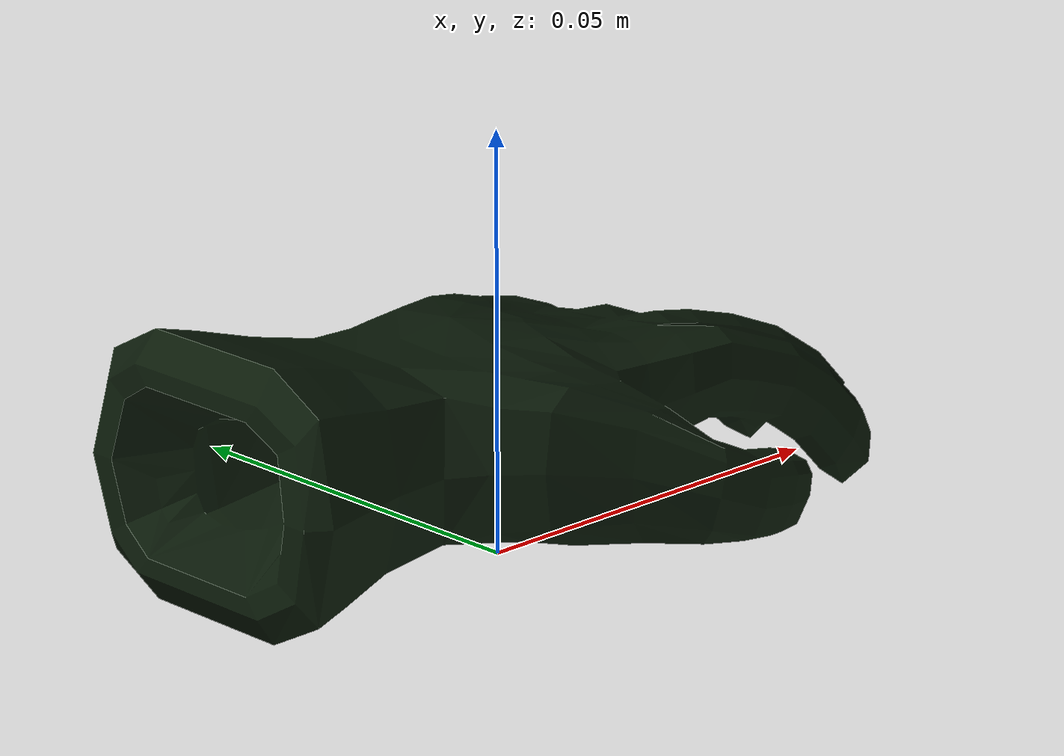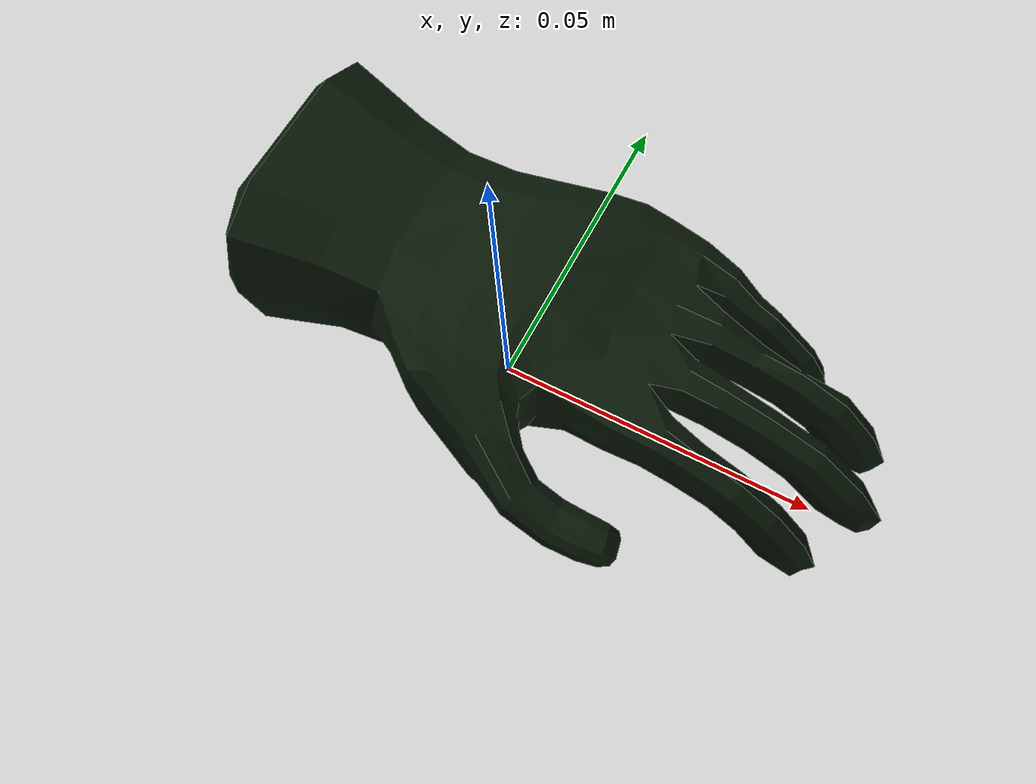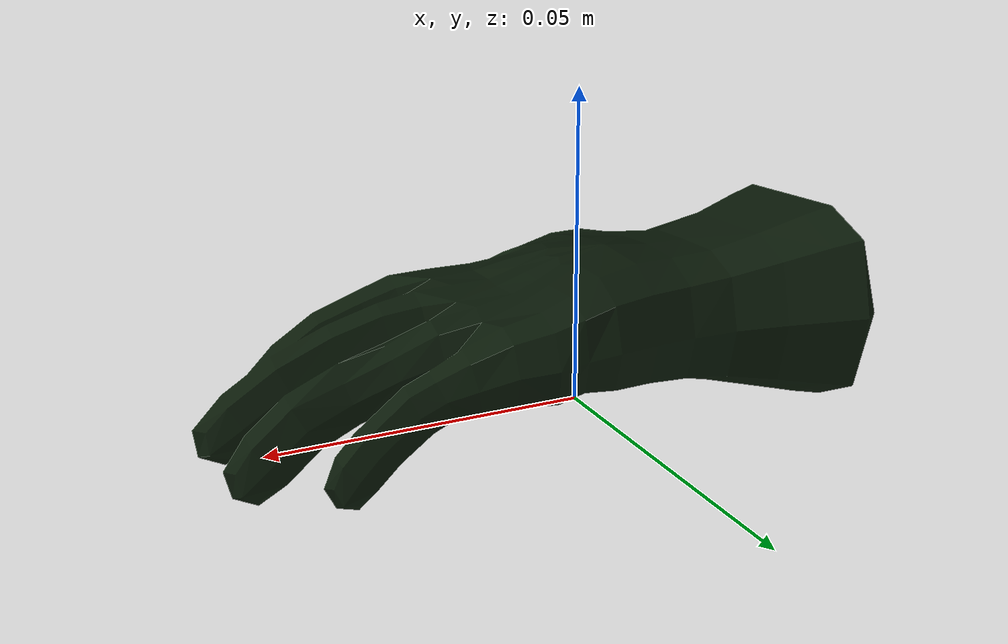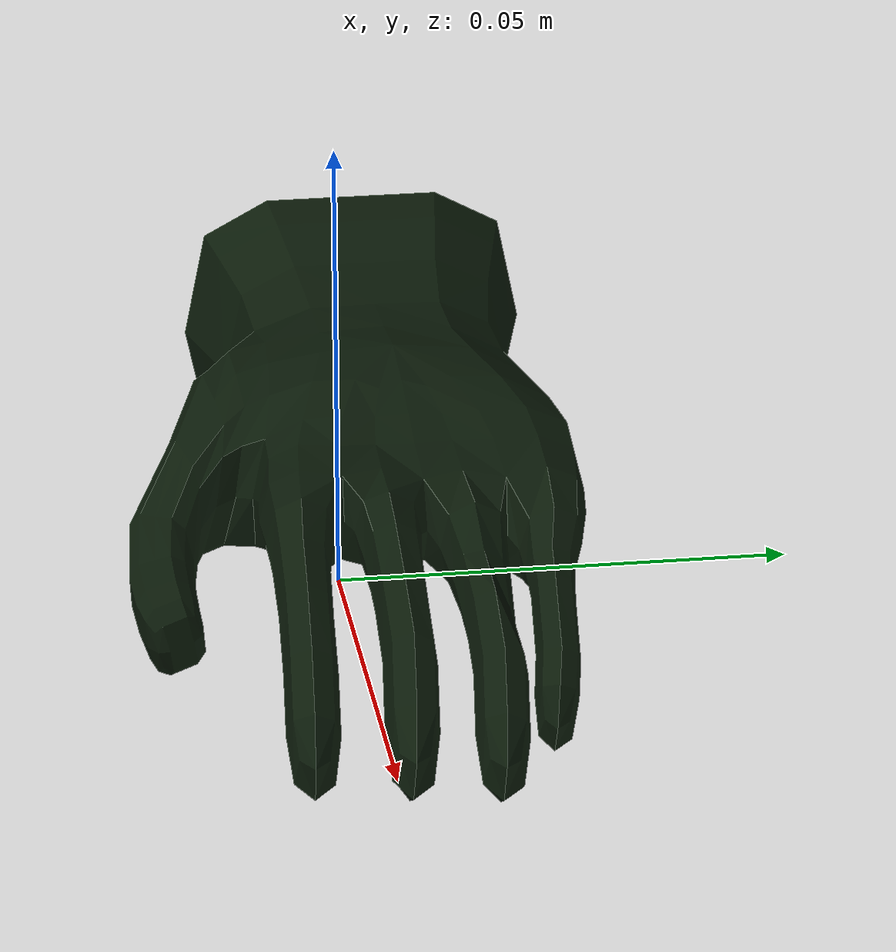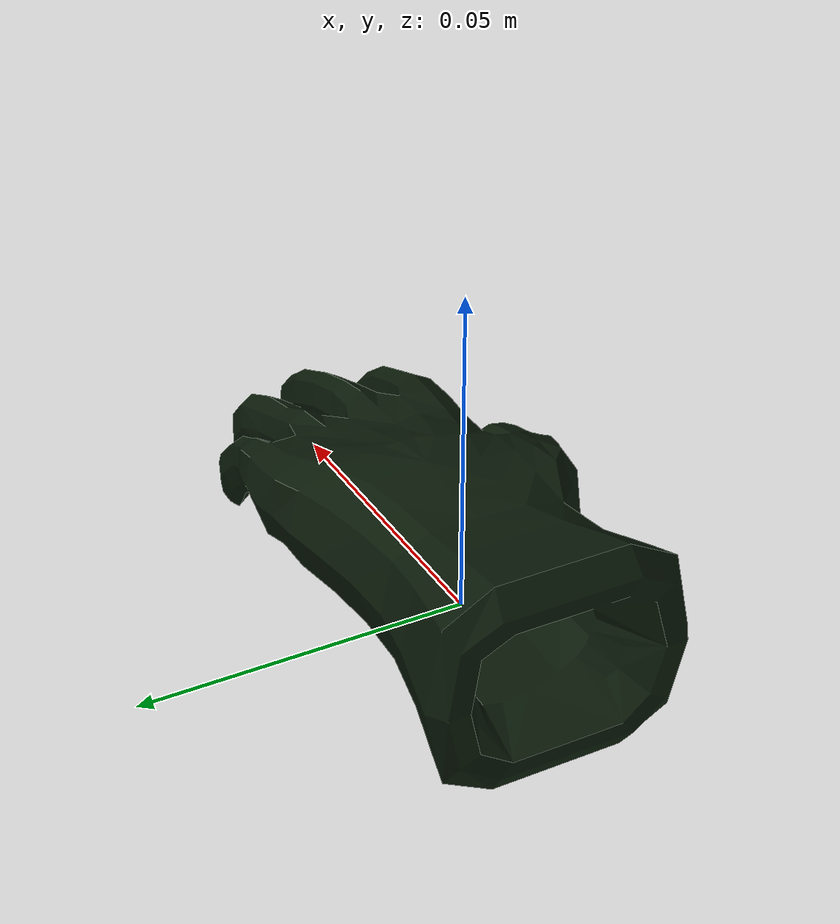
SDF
<?xml version="1.0" ?>

<sdf version="1.4">
  <model name="iai_glove">
    <static>true</static>
    <link name="iai_glove">
      <collision name="collision">
	<geometry>
            <mesh>
	      <uri>model://glove/glove.dae</uri>
	    </mesh>
          </geometry>
      </collision>
      <visual name="vis">
        <cast_shadows>false</cast_shadows>

	<geometry>
            <mesh>
	      <uri>model://glove/glove.dae</uri>
	    </mesh>
          </geometry>
      </visual>

    </link>
          <plugin name="scanable"
              filename="libiai_object_transmitter.so">
            <object_type>terrain</object_type><!-- this is used to determine -->
            <absolute_detection>true</absolute_detection>
            <attribute key="otype" value="glove"/>
            <attribute key="manmade" value="true"/>
            <attribute key="navigation" value="inner"/>
      </plugin>
  </model>
</sdf>
